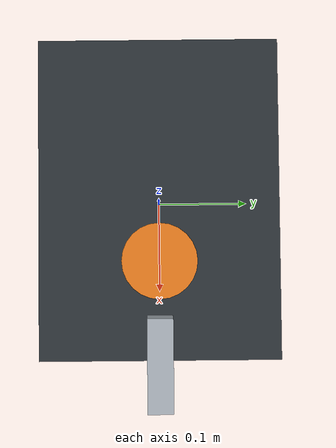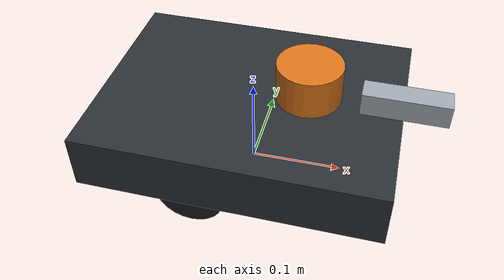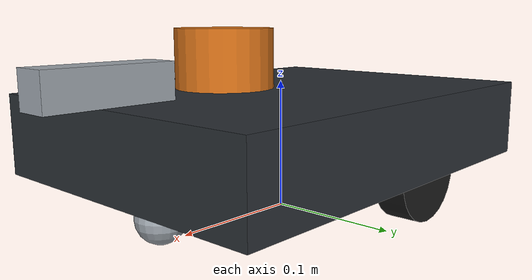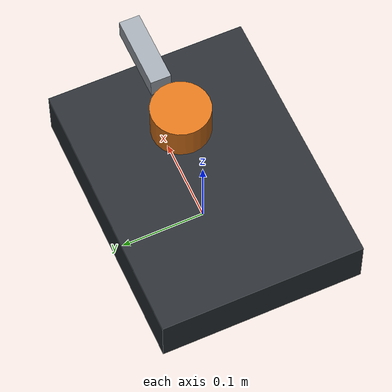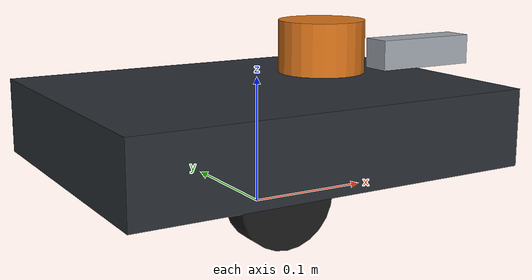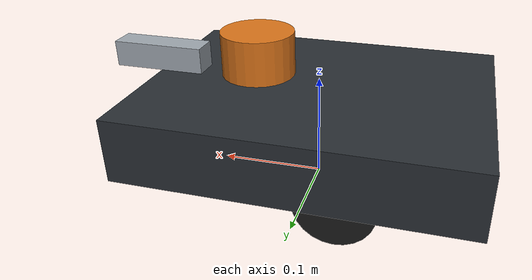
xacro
<?xml version="1.0"?>
<robot name="navbot" xmlns:xacro="http://www.ros.org/wiki/xacro">

  <xacro:arg name="publish_odom_tf" default="false"/>
  <xacro:arg name="lidar_visualize" default="false"/>
  <xacro:arg name="enable_camera" default="true"/>
  <xacro:arg name="enable_lidar" default="true"/>

  <xacro:include filename="navbot_constants.xacro"/>
  <xacro:include filename="navbot_base.xacro"/>
  <xacro:include filename="navbot_sensors.xacro"/>
  <xacro:include filename="navbot_drivetrain.xacro"/>

</robot>

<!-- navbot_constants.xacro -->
<robot xmlns:xacro="http://www.ros.org/wiki/xacro">

  <xacro:property name="chassis_len"  value="0.320"/>
  <xacro:property name="chassis_wid"  value="0.240"/>
  <xacro:property name="chassis_hgt"  value="0.060"/>
  <xacro:property name="chassis_mass" value="1.80"/>

  <xacro:property name="wheel_radius" value="0.036"/>
  <xacro:property name="wheel_width"  value="0.024"/>
  <xacro:property name="wheel_mass"   value="0.120"/>
  <xacro:property name="wheel_dia"    value="${2 * wheel_radius}"/>

  <xacro:property name="track_width"  value="0.196"/>
  <xacro:property name="axle_x"       value="-0.040"/>
  <xacro:property name="base_z"       value="0.065"/>
  <xacro:property name="wheel_z_rel"  value="${wheel_radius - base_z}"/>
  <xacro:property name="wheel_y_rel"  value="${track_width / 2}"/>

  <xacro:property name="caster_radius" value="0.018"/>
  <xacro:property name="caster_mass"   value="0.030"/>
  <xacro:property name="caster_x"      value="0.120"/>
  <xacro:property name="caster_z_rel"  value="${caster_radius - base_z}"/>

  <xacro:property name="lidar_radius" value="0.035"/>
  <xacro:property name="lidar_hgt"    value="0.042"/>
  <xacro:property name="lidar_mass"   value="0.100"/>
  <xacro:property name="lidar_x"      value="0.060"/>
  <xacro:property name="lidar_z"      value="0.121"/>
  <xacro:property name="lidar_z_rel"  value="${lidar_z - base_z}"/>
  <xacro:property name="laser_z_off"  value="0.008"/>

  <xacro:property name="camera_len"  value="0.090"/>
  <xacro:property name="camera_wid"  value="0.025"/>
  <xacro:property name="camera_hgt"  value="0.025"/>
  <xacro:property name="camera_mass" value="0.060"/>
  <xacro:property name="camera_x"    value="0.160"/>
  <xacro:property name="camera_z"    value="0.110"/>
  <xacro:property name="camera_z_rel" value="${camera_z - base_z}"/>

  <xacro:property name="imu_size"  value="0.020"/>
  <xacro:property name="imu_mass"  value="0.005"/>
  <xacro:property name="imu_z"     value="0.045"/>
  <xacro:property name="imu_z_rel" value="${imu_z - base_z}"/>

  <xacro:property name="total_mass"
    value="${chassis_mass + 2*wheel_mass + caster_mass + lidar_mass + camera_mass + imu_mass}"/>

  <xacro:property name="chassis_circumradius"
    value="${sqrt(max((chassis_len/2 + camera_len)**2, (chassis_len/2)**2 + (chassis_wid/2)**2))}"/>

  <material name="navbot_dark">
    <color rgba="0.16 0.18 0.20 1.0"/>
  </material>
  <material name="navbot_accent">
    <color rgba="0.85 0.45 0.10 1.0"/>
  </material>
  <material name="navbot_steel">
    <color rgba="0.62 0.65 0.68 1.0"/>
  </material>
  <material name="navbot_black_rubber">
    <color rgba="0.10 0.10 0.10 1.0"/>
  </material>

  <xacro:macro name="box_inertia" params="m x y z">
    <inertial>
      <origin xyz="0 0 0"/>
      <mass value="${m}"/>
      <inertia ixx="${m/12*(y*y + z*z)}" ixy="0" ixz="0"
               iyy="${m/12*(x*x + z*z)}" iyz="0"
               izz="${m/12*(x*x + y*y)}"/>
    </inertial>
  </xacro:macro>

  <xacro:macro name="cyl_inertia" params="m r l">
    <inertial>
      <origin xyz="0 0 0"/>
      <mass value="${m}"/>
      <inertia ixx="${m*(3*r*r + l*l)/12}" ixy="0" ixz="0"
               iyy="${m*(3*r*r + l*l)/12}" iyz="0"
               izz="${0.5*m*r*r}"/>
    </inertial>
  </xacro:macro>

  <xacro:macro name="sphere_inertia" params="m r">
    <inertial>
      <origin xyz="0 0 0"/>
      <mass value="${m}"/>
      <inertia ixx="${0.4*m*r*r}" ixy="0" ixz="0"
               iyy="${0.4*m*r*r}" iyz="0"
               izz="${0.4*m*r*r}"/>
    </inertial>
  </xacro:macro>

</robot>

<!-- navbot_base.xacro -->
<robot xmlns:xacro="http://www.ros.org/wiki/xacro">

  <link name="base_footprint"/>

  <link name="base_link">
    <visual>
      <origin xyz="0 0 0" rpy="0 0 0"/>
      <geometry>
        <box size="${chassis_len} ${chassis_wid} ${chassis_hgt}"/>
      </geometry>
      <material name="navbot_dark"/>
    </visual>
    <collision>
      <origin xyz="0 0 0" rpy="0 0 0"/>
      <geometry>
        <box size="${chassis_len} ${chassis_wid} ${chassis_hgt}"/>
      </geometry>
    </collision>
    <xacro:box_inertia m="${chassis_mass}" x="${chassis_len}" y="${chassis_wid}" z="${chassis_hgt}"/>
  </link>

  <joint name="base_joint" type="fixed">
    <parent link="base_footprint"/>
    <child link="base_link"/>
    <origin xyz="0 0 ${base_z}" rpy="0 0 0"/>
  </joint>

  <xacro:macro name="drive_wheel" params="prefix y_sign">
    <link name="${prefix}_wheel_link">
      <visual>
        <origin xyz="0 0 0" rpy="${pi/2} 0 0"/>
        <geometry>
          <cylinder radius="${wheel_radius}" length="${wheel_width}"/>
        </geometry>
        <material name="navbot_black_rubber"/>
      </visual>
      <collision>
        <origin xyz="0 0 0" rpy="${pi/2} 0 0"/>
        <geometry>
          <cylinder radius="${wheel_radius}" length="${wheel_width}"/>
        </geometry>
      </collision>
      <xacro:cyl_inertia m="${wheel_mass}" r="${wheel_radius}" l="${wheel_width}"/>
    </link>

    <joint name="${prefix}_wheel_joint" type="continuous">
      <parent link="base_link"/>
      <child link="${prefix}_wheel_link"/>
      <origin xyz="${axle_x} ${y_sign * wheel_y_rel} ${wheel_z_rel}" rpy="0 0 0"/>
      <axis xyz="0 1 0"/>
    </joint>
  </xacro:macro>

  <xacro:drive_wheel prefix="left"  y_sign="1"/>
  <xacro:drive_wheel prefix="right" y_sign="-1"/>

  <link name="caster_link">
    <visual>
      <origin xyz="0 0 0" rpy="0 0 0"/>
      <geometry>
        <sphere radius="${caster_radius}"/>
      </geometry>
      <material name="navbot_steel"/>
    </visual>
    <collision>
      <origin xyz="0 0 0" rpy="0 0 0"/>
      <geometry>
        <sphere radius="${caster_radius}"/>
      </geometry>
    </collision>
    <xacro:sphere_inertia m="${caster_mass}" r="${caster_radius}"/>
  </link>

  <joint name="caster_joint" type="fixed">
    <parent link="base_link"/>
    <child link="caster_link"/>
    <origin xyz="${caster_x} 0 ${caster_z_rel}" rpy="0 0 0"/>
  </joint>

</robot>

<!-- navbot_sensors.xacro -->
<robot xmlns:xacro="http://www.ros.org/wiki/xacro">

  <link name="scanner_link">
    <visual>
      <origin xyz="0 0 0" rpy="0 0 0"/>
      <geometry>
        <cylinder radius="${lidar_radius}" length="${lidar_hgt}"/>
      </geometry>
      <material name="navbot_accent"/>
    </visual>
    <collision>
      <origin xyz="0 0 0" rpy="0 0 0"/>
      <geometry>
        <cylinder radius="${lidar_radius}" length="${lidar_hgt}"/>
      </geometry>
    </collision>
    <xacro:cyl_inertia m="${lidar_mass}" r="${lidar_radius}" l="${lidar_hgt}"/>
  </link>

  <joint name="scanner_joint" type="fixed">
    <parent link="base_link"/>
    <child link="scanner_link"/>
    <origin xyz="${lidar_x} 0 ${lidar_z_rel}" rpy="0 0 0"/>
  </joint>

  <link name="scanner_frame"/>

  <joint name="scanner_beam_joint" type="fixed">
    <parent link="scanner_link"/>
    <child link="scanner_frame"/>
    <origin xyz="0 0 ${laser_z_off}" rpy="0 0 0"/>
  </joint>

  <gazebo reference="scanner_frame">
    <xacro:if value="$(arg enable_lidar)">
    <sensor name="navbot_scanner" type="ray">
      <pose>0 0 0 0 0 0</pose>
      <visualize>$(arg lidar_visualize)</visualize>
      <update_rate>10</update_rate>
      <ray>
        <scan>
          <horizontal>
            <samples>540</samples>
            <resolution>1</resolution>
            <min_angle>${-157.0 * pi / 180.0}</min_angle>
            <max_angle>${157.0 * pi / 180.0}</max_angle>
          </horizontal>
        </scan>
        <range>
          <min>0.15</min>
          <max>8.0</max>
          <resolution>0.01</resolution>
        </range>
        <camera>
          <image>
            <width>540</width>
            <height>1</height>
            <format>R32F</format>
          </image>
          <near_clip_dist>0.15</near_clip_dist>
          <far_clip_dist>8.0</far_clip_dist>
        </camera>
        <noise>
          <type>gaussian</type>
          <mean>0.0</mean>
          <stddev>0.01</stddev>
        </noise>
      </ray>
      <plugin name="scanner_driver" filename="libgazebo_ros_ray_sensor.so">
        <ros>
          <argument>~/out:=/scan</argument>
        </ros>
        <output_type>sensor_msgs/LaserScan</output_type>
        <frame_name>scanner_frame</frame_name>
      </plugin>
    </sensor>
    </xacro:if>
  </gazebo>

  <link name="camera_link">
    <visual>
      <origin xyz="0 0 0" rpy="0 0 0"/>
      <geometry>
        <box size="${camera_len} ${camera_wid} ${camera_hgt}"/>
      </geometry>
      <material name="navbot_steel"/>
    </visual>
    <collision>
      <origin xyz="0 0 0" rpy="0 0 0"/>
      <geometry>
        <box size="${camera_len} ${camera_wid} ${camera_hgt}"/>
      </geometry>
    </collision>
    <xacro:box_inertia m="${camera_mass}" x="${camera_len}" y="${camera_wid}" z="${camera_hgt}"/>
  </link>

  <joint name="camera_joint" type="fixed">
    <parent link="base_link"/>
    <child link="camera_link"/>
    <origin xyz="${camera_x} 0 ${camera_z_rel}" rpy="0 0 0"/>
  </joint>

  <link name="camera_optical_frame"/>

  <joint name="camera_optical_joint" type="fixed">
    <parent link="camera_link"/>
    <child link="camera_optical_frame"/>
    <origin xyz="0 0 0" rpy="${-pi/2} 0 ${-pi/2}"/>
  </joint>

  <gazebo reference="camera_link">
    <material>Gazebo/Grey</material>
    <xacro:if value="$(arg enable_camera)">
      <sensor name="navbot_camera" type="camera">
        <pose>0 0 0 0 0 0</pose>
        <visualize>false</visualize>
        <update_rate>15</update_rate>
        <camera>
          <horizontal_fov>${70 * pi / 180.0}</horizontal_fov>
          <image>
            <width>640</width>
            <height>480</height>
            <format>R8G8B8</format>
          </image>
          <clip>
            <near>0.05</near>
            <far>20.0</far>
          </clip>
        </camera>
        <plugin name="camera_driver" filename="libgazebo_ros_camera.so">
          <frame_name>camera_optical_frame</frame_name>
        </plugin>
      </sensor>
    </xacro:if>
  </gazebo>

  <link name="imu_link">
    <visual>
      <origin xyz="0 0 0" rpy="0 0 0"/>
      <geometry>
        <box size="${imu_size} ${imu_size} 0.006"/>
      </geometry>
      <material name="navbot_accent"/>
    </visual>
    <xacro:box_inertia m="${imu_mass}" x="${imu_size}" y="${imu_size}" z="0.006"/>
  </link>

  <joint name="imu_joint" type="fixed">
    <parent link="base_link"/>
    <child link="imu_link"/>
    <origin xyz="0 0 ${imu_z_rel}" rpy="0 0 0"/>
  </joint>

  <gazebo reference="imu_link">
    <sensor name="navbot_imu" type="imu">
      <pose>0 0 0 0 0 0</pose>
      <visualize>false</visualize>
      <update_rate>200</update_rate>
      <plugin name="imu_driver" filename="libgazebo_ros_imu_sensor.so">
        <ros>
          <argument>~/out:=/imu/data</argument>
        </ros>
        <frame_name>imu_link</frame_name>
        <initialOrientationAsReference>false</initialOrientationAsReference>
      </plugin>
    </sensor>
  </gazebo>

</robot>
